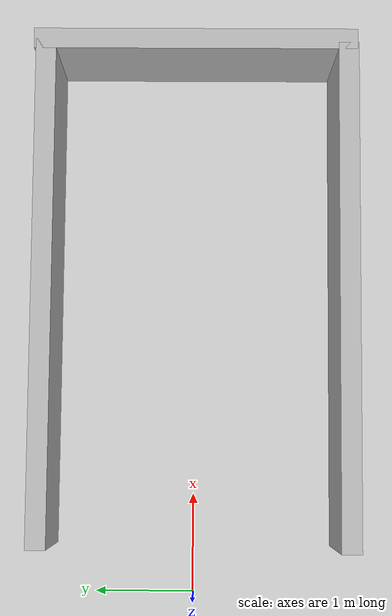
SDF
<?xml version="1.0"?>
<sdf version="1.6">
  <world name="v2-04g-r2-maneuver-s4965">
    <gravity>0 0 -9.81</gravity>
    <physics name="v2_deterministic" type="ode">
      <max_step_size>0.002</max_step_size>
      <real_time_update_rate>500</real_time_update_rate>
    </physics>
    <include>
      <uri>model://sun</uri>
    </include>
    <include>
      <uri>model://ground_plane</uri>
    </include>
    <model name="bay-left">
      <static>true</static>
      <pose>2.997068204 1.495562361 0.600000000 0 0 -0.003683002</pose>
      <link name="link">
        <collision name="collision">
          <geometry>
            <box>
              <size>5.000000 0.200000 1.200000</size>
            </box>
          </geometry>
        </collision>
        <visual name="visual">
          <geometry>
            <box>
              <size>5.000000 0.200000 1.200000</size>
            </box>
          </geometry>
        </visual>
      </link>
    </model>
    <model name="bay-right">
      <static>true</static>
      <pose>2.977901978 -1.509701231 0.600000000 0 0 0.002213545</pose>
      <link name="link">
        <collision name="collision">
          <geometry>
            <box>
              <size>5.000000 0.200000 1.200000</size>
            </box>
          </geometry>
        </collision>
        <visual name="visual">
          <geometry>
            <box>
              <size>5.000000 0.200000 1.200000</size>
            </box>
          </geometry>
        </visual>
      </link>
    </model>
    <model name="bay-back">
      <static>true</static>
      <pose>5.506443460 0.005353666 0.600000000 0 0 0.003781760</pose>
      <link name="link">
        <collision name="collision">
          <geometry>
            <box>
              <size>0.200000 3.200000 1.200000</size>
            </box>
          </geometry>
        </collision>
        <visual name="visual">
          <geometry>
            <box>
              <size>0.200000 3.200000 1.200000</size>
            </box>
          </geometry>
        </visual>
      </link>
    </model>
  </world>
</sdf>
